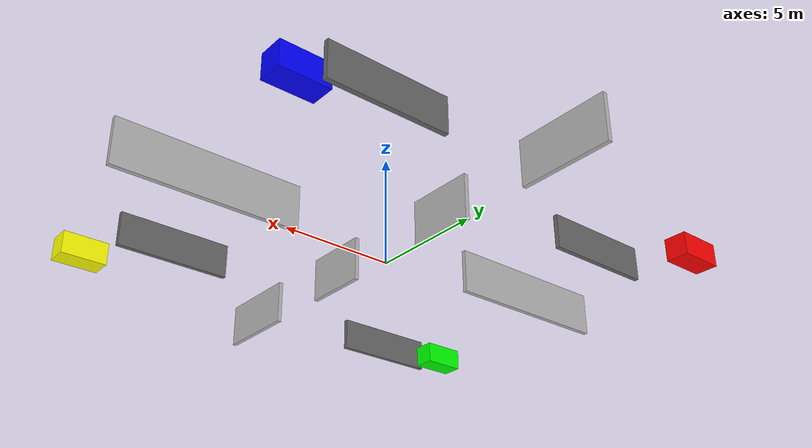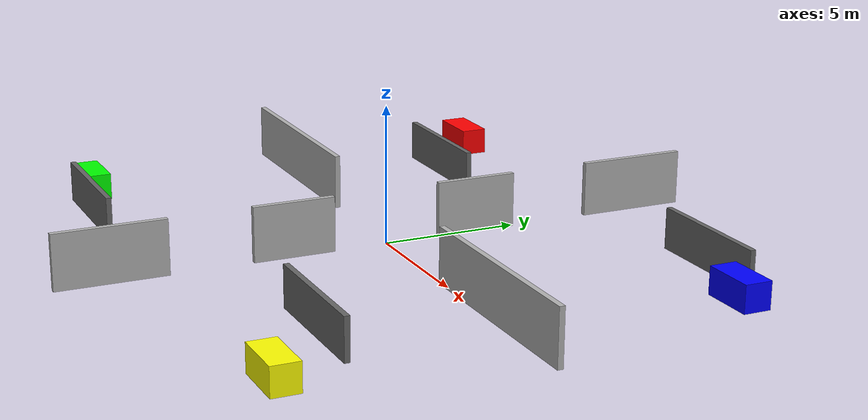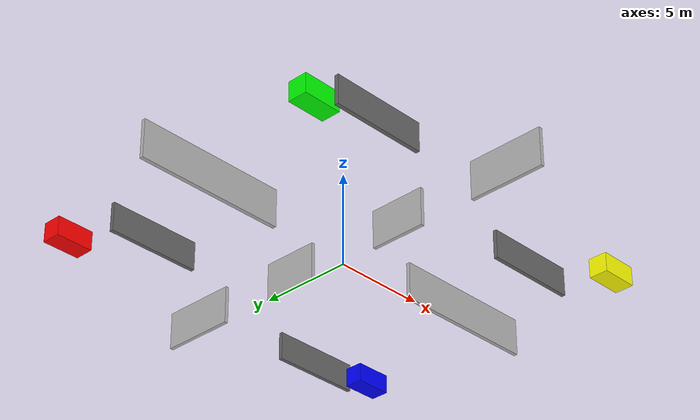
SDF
<?xml version="1.0"?>
<sdf version="1.10">

    <model name="obstacle_world">
    <!-- White floor -->

    <!-- OUTER WALLS -->

    <!-- INTERNAL WALLS -->

    <!-- Horizontal wall across the middle with one central opening -->
    <model name="mid_wall_left">
        <static>true</static>
        <pose>-8.5 0 1 0 0 0</pose>
        <link name="link">
            <collision name="collision">
                <geometry>
                    <box>
                        <size>8 0.2 2</size>
                    </box>
                </geometry>
            </collision>
            <visual name="visual">
                <geometry>
                    <box>
                        <size>8 0.2 2</size>
                    </box>
                </geometry>
                <material>
                    <ambient>0.7 0.7 0.7 1</ambient>
                    <diffuse>0.7 0.7 0.7 1</diffuse>
                </material>
            </visual>
        </link>
    </model>

    <model name="mid_wall_right">
        <static>true</static>
        <pose>8.5 0 1 0 0 0</pose>
        <link name="link">
            <collision name="collision">
                <geometry>
                    <box>
                        <size>8 0.2 2</size>
                    </box>
                </geometry>
            </collision>
            <visual name="visual">
                <geometry>
                    <box>
                        <size>8 0.2 2</size>
                    </box>
                </geometry>
                <material>
                    <ambient>0.7 0.7 0.7 1</ambient>
                    <diffuse>0.7 0.7 0.7 1</diffuse>
                </material>
            </visual>
        </link>
    </model>

    <!-- Vertical wall across the middle with offset openings -->
    <!-- top segment -->
    <model name="mid_vertical_top">
        <static>true</static>
        <pose>0 10 1 0 0 0</pose>
        <link name="link">
            <collision name="collision">
                <geometry>
                    <box>
                        <size>0.2 4 2</size>
                    </box>
                </geometry>
            </collision>
            <visual name="visual">
                <geometry>
                    <box>
                        <size>0.2 4 2</size>
                    </box>
                </geometry>
                <material>
                    <ambient>0.7 0.7 0.7 1</ambient>
                    <diffuse>0.7 0.7 0.7 1</diffuse>
                </material>
            </visual>
        </link>
    </model>

    <!-- upper-middle segment -->
    <model name="mid_vertical_upper">
        <static>true</static>
        <pose>0 3.5 1 0 0 0</pose>
        <link name="link">
            <collision name="collision">
                <geometry>
                    <box>
                        <size>0.2 3 2</size>
                    </box>
                </geometry>
            </collision>
            <visual name="visual">
                <geometry>
                    <box>
                        <size>0.2 3 2</size>
                    </box>
                </geometry>
                <material>
                    <ambient>0.7 0.7 0.7 1</ambient>
                    <diffuse>0.7 0.7 0.7 1</diffuse>
                </material>
            </visual>
        </link>
    </model>

    <!-- lower-middle segment -->
    <model name="mid_vertical_lower">
        <static>true</static>
        <pose>0 -3.5 1 0 0 0</pose>
        <link name="link">
            <collision name="collision">
                <geometry>
                    <box>
                        <size>0.2 3 2</size>
                    </box>
                </geometry>
            </collision>
            <visual name="visual">
                <geometry>
                    <box>
                        <size>0.2 3 2</size>
                    </box>
                </geometry>
                <material>
                    <ambient>0.7 0.7 0.7 1</ambient>
                    <diffuse>0.7 0.7 0.7 1</diffuse>
                </material>
            </visual>
        </link>
    </model>

    <!-- bottom segment -->
    <model name="mid_vertical_bottom">
        <static>true</static>
        <pose>0 -10 1 0 0 0</pose>
        <link name="link">
            <collision name="collision">
                <geometry>
                    <box>
                        <size>0.2 4 2</size>
                    </box>
                </geometry>
            </collision>
            <visual name="visual">
                <geometry>
                    <box>
                        <size>0.2 4 2</size>
                    </box>
                </geometry>
                <material>
                    <ambient>0.7 0.7 0.7 1</ambient>
                    <diffuse>0.7 0.7 0.7 1</diffuse>
                </material>
            </visual>
        </link>
    </model>

    <!-- LOCAL BLOCKERS / AISLE OBSTACLES -->

    <!-- Top-left quadrant blocker -->
    <model name="blocker_tl">
        <static>true</static>
        <pose>-7 5.5 0.75 0 0 0</pose>
        <link name="link">
            <collision name="collision">
                <geometry>
                    <box>
                        <size>5 0.2 1.5</size>
                    </box>
                </geometry>
            </collision>
            <visual name="visual">
                <geometry>
                    <box>
                        <size>5 0.2 1.5</size>
                    </box>
                </geometry>
                <material>
                    <ambient>0.4 0.4 0.4 1</ambient>
                    <diffuse>0.4 0.4 0.4 1</diffuse>
                </material>
            </visual>
        </link>
    </model>

    <!-- Top-right quadrant blocker -->
    <model name="blocker_tr">
        <static>true</static>
        <pose>7 8.8 0.75 0 0 0</pose>
        <link name="link">
            <collision name="collision">
                <geometry>
                    <box>
                        <size>5 0.2 1.5</size>
                    </box>
                </geometry>
            </collision>
            <visual name="visual">
                <geometry>
                    <box>
                        <size>5 0.2 1.5</size>
                    </box>
                </geometry>
                <material>
                    <ambient>0.4 0.4 0.4 1</ambient>
                    <diffuse>0.4 0.4 0.4 1</diffuse>
                </material>
            </visual>
        </link>
    </model>

    <!-- Bottom-left quadrant blocker -->
    <model name="blocker_bl">
        <static>true</static>
        <pose>-7 -8.8 0.75 0 0 0</pose>
        <link name="link">
            <collision name="collision">
                <geometry>
                    <box>
                        <size>5 0.2 1.5</size>
                    </box>
                </geometry>
            </collision>
            <visual name="visual">
                <geometry>
                    <box>
                        <size>5 0.2 1.5</size>
                    </box>
                </geometry>
                <material>
                    <ambient>0.4 0.4 0.4 1</ambient>
                    <diffuse>0.4 0.4 0.4 1</diffuse>
                </material>
            </visual>
        </link>
    </model>

    <!-- Bottom-right quadrant blocker -->
    <model name="blocker_br">
        <static>true</static>
        <pose>7 -5.5 0.75 0 0 0</pose>
        <link name="link">
            <collision name="collision">
                <geometry>
                    <box>
                        <size>5 0.2 1.5</size>
                    </box>
                </geometry>
            </collision>
            <visual name="visual">
                <geometry>
                    <box>
                        <size>5 0.2 1.5</size>
                    </box>
                </geometry>
                <material>
                    <ambient>0.4 0.4 0.4 1</ambient>
                    <diffuse>0.4 0.4 0.4 1</diffuse>
                </material>
            </visual>
        </link>
    </model>

    <!-- SHELVES / COLORED BOXES -->

    <model name="shelf_red">
        <static>true</static>
        <pose>-10 8 0.5 0 0 0</pose>
        <link name="link">
            <collision name="collision">
                <geometry>
                    <box>
                        <size>2 1 1</size>
                    </box>
                </geometry>
            </collision>
            <visual name="visual">
                <geometry>
                    <box>
                        <size>2 1 1</size>
                    </box>
                </geometry>
                <material>
                    <ambient>1 0 0 1</ambient>
                    <diffuse>1 0 0 1</diffuse>
                </material>
            </visual>
        </link>
    </model>

    <model name="shelf_blue">
        <static>true</static>
        <pose>10 8 0.5 0 0 0</pose>
        <link name="link">
            <collision name="collision">
                <geometry>
                    <box>
                        <size>2 1 1</size>
                    </box>
                </geometry>
            </collision>
            <visual name="visual">
                <geometry>
                    <box>
                        <size>2 1 1</size>
                    </box>
                </geometry>
                <material>
                    <ambient>0 0 1 1</ambient>
                    <diffuse>0 0 1 1</diffuse>
                </material>
            </visual>
        </link>
    </model>

    <model name="shelf_green">
        <static>true</static>
        <pose>-10 -8 0.5 0 0 0</pose>
        <link name="link">
            <collision name="collision">
                <geometry>
                    <box>
                        <size>2 1 1</size>
                    </box>
                </geometry>
            </collision>
            <visual name="visual">
                <geometry>
                    <box>
                        <size>2 1 1</size>
                    </box>
                </geometry>
                <material>
                    <ambient>0 1 0 1</ambient>
                    <diffuse>0 1 0 1</diffuse>
                </material>
            </visual>
        </link>
    </model>

    <model name="shelf_yellow">
        <static>true</static>
        <pose>10 -8 0.5 0 0 0</pose>
        <link name="link">
            <collision name="collision">
                <geometry>
                    <box>
                        <size>2 1 1</size>
                    </box>
                </geometry>
            </collision>
            <visual name="visual">
                <geometry>
                    <box>
                        <size>2 1 1</size>
                    </box>
                </geometry>
                <material>
                    <ambient>1 1 0 1</ambient>
                    <diffuse>1 1 0 1</diffuse>
                </material>
            </visual>
        </link>
    </model>
    </model>
</sdf>
